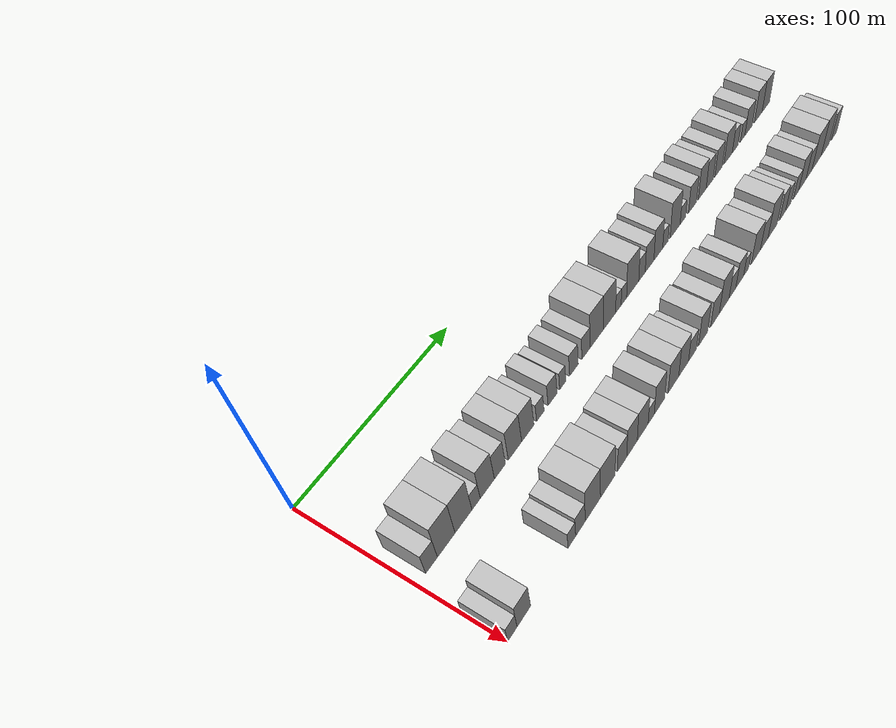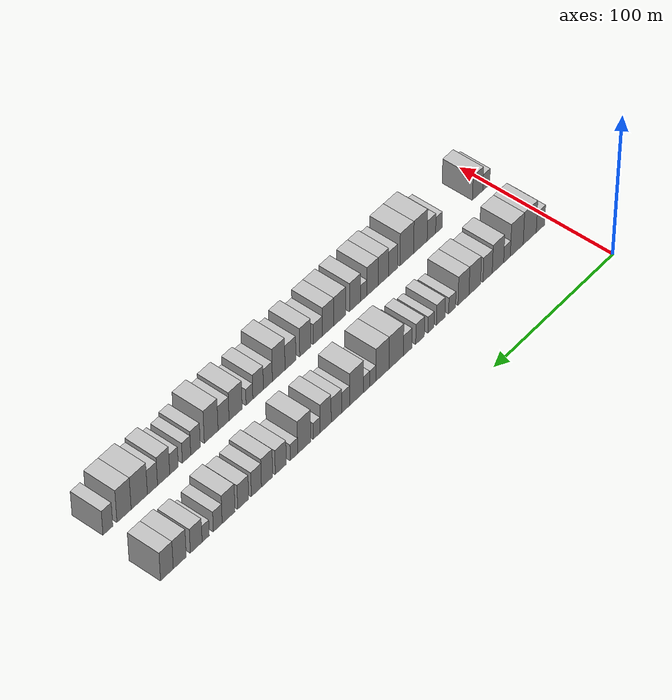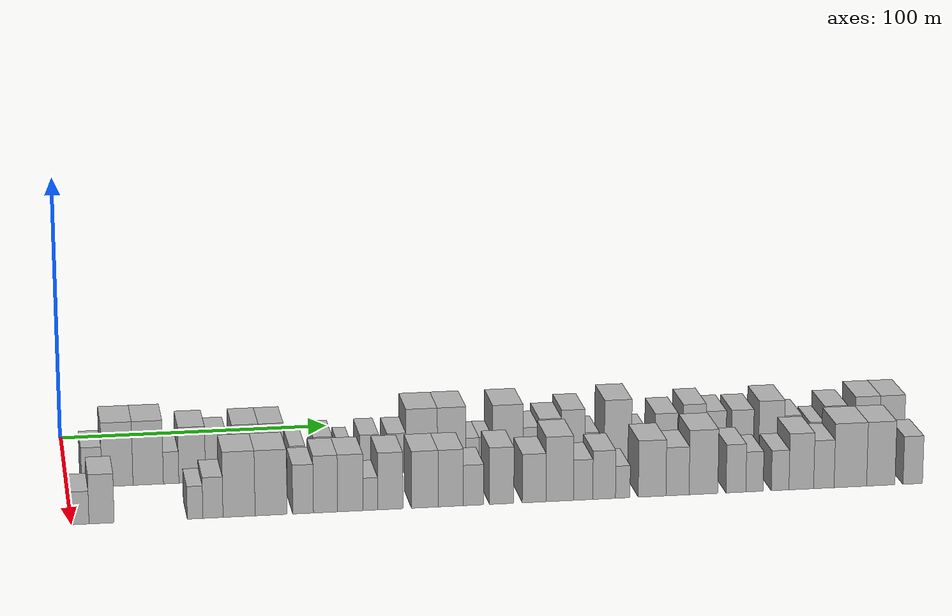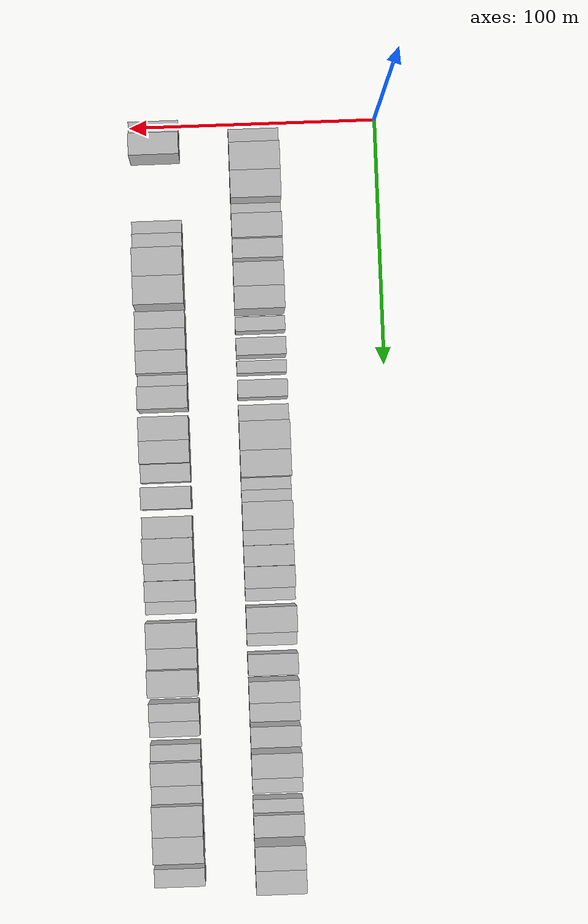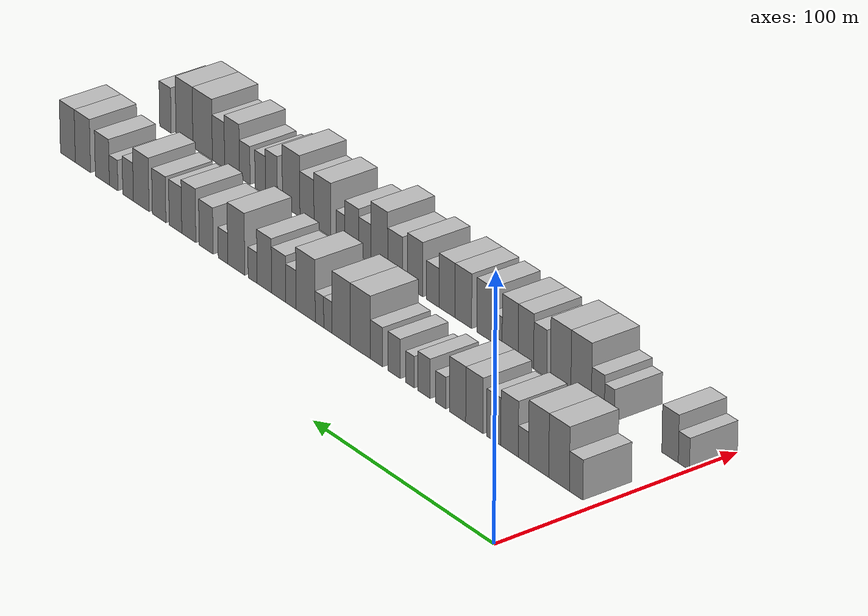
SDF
<sdf version="1.6">
 <world name="default">
  <model name="building_35">
   <static>1</static>
   <pose>50.0000 8.9988 0 0.000000 0.000000 0.000000</pose>
   <link name="link">
    <pose>0 0 7.50 0 0 0</pose>
    <collision name="collision"><geometry><box><size>20.0000 7.2240 15.0000</size></box></geometry></collision>
    <visual name="visual">
     <cast_shadows>0</cast_shadows>
     <geometry><box><size>20.0000 7.2240 15.0000</size></box></geometry>
     <material>
      <script>
       <uri>model://HANNAS_wall/materials/scripts</uri>
       <uri>model://HANNAS_wall/materials/textures</uri>
       <name>vrc/HANNAS_wall</name>
      </script>
     </material>
    </visual>
   </link>
  </model>
  <model name="building_36">
   <static>1</static>
   <pose>50.0000 18.1661 0 0.000000 0.000000 0.000000</pose>
   <link name="link">
    <pose>0 0 12.00 0 0 0</pose>
    <collision name="collision"><geometry><box><size>20.0000 11.1104 24.0000</size></box></geometry></collision>
    <visual name="visual">
     <cast_shadows>0</cast_shadows>
     <geometry><box><size>20.0000 11.1104 24.0000</size></box></geometry>
     <material>
      <script>
       <uri>model://HANNAS_wall/materials/scripts</uri>
       <uri>model://HANNAS_wall/materials/textures</uri>
       <name>vrc/HANNAS_wall</name>
      </script>
     </material>
    </visual>
   </link>
  </model>
  <model name="building_37">
   <static>1</static>
   <pose>50.0000 29.1896 0 0.000000 0.000000 0.000000</pose>
   <link name="link">
    <pose>0 0 12.00 0 0 0</pose>
    <collision name="collision"><geometry><box><size>20.0000 10.9366 24.0000</size></box></geometry></collision>
    <visual name="visual">
     <cast_shadows>0</cast_shadows>
     <geometry><box><size>20.0000 10.9366 24.0000</size></box></geometry>
     <material>
      <script>
       <uri>model://HANNAS_wall/materials/scripts</uri>
       <uri>model://HANNAS_wall/materials/textures</uri>
       <name>vrc/HANNAS_wall</name>
      </script>
     </material>
    </visual>
   </link>
  </model>
  <model name="building_38">
   <static>1</static>
   <pose>50.0000 37.4352 0 0.000000 0.000000 0.000000</pose>
   <link name="link">
    <pose>0 0 6.00 0 0 0</pose>
    <collision name="collision"><geometry><box><size>20.0000 5.5546 12.0000</size></box></geometry></collision>
    <visual name="visual">
     <cast_shadows>0</cast_shadows>
     <geometry><box><size>20.0000 5.5546 12.0000</size></box></geometry>
     <material>
      <script>
       <uri>model://HANNAS_wall/materials/scripts</uri>
       <uri>model://HANNAS_wall/materials/textures</uri>
       <name>vrc/HANNAS_wall</name>
      </script>
     </material>
    </visual>
   </link>
  </model>
  <model name="building_39">
   <static>1</static>
   <pose>50.0000 45.0216 0 0.000000 0.000000 0.000000</pose>
   <link name="link">
    <pose>0 0 10.50 0 0 0</pose>
    <collision name="collision"><geometry><box><size>20.0000 9.6183 21.0000</size></box></geometry></collision>
    <visual name="visual">
     <cast_shadows>0</cast_shadows>
     <geometry><box><size>20.0000 9.6183 21.0000</size></box></geometry>
     <material>
      <script>
       <uri>model://HANNAS_wall/materials/scripts</uri>
       <uri>model://HANNAS_wall/materials/textures</uri>
       <name>vrc/HANNAS_wall</name>
      </script>
     </material>
    </visual>
   </link>
  </model>
  <model name="building_40">
   <static>1</static>
   <pose>50.0000 53.6917 0 0.000000 0.000000 0.000000</pose>
   <link name="link">
    <pose>0 0 9.00 0 0 0</pose>
    <collision name="collision"><geometry><box><size>20.0000 7.7219 18.0000</size></box></geometry></collision>
    <visual name="visual">
     <cast_shadows>0</cast_shadows>
     <geometry><box><size>20.0000 7.7219 18.0000</size></box></geometry>
     <material>
      <script>
       <uri>model://HANNAS_wall/materials/scripts</uri>
       <uri>model://HANNAS_wall/materials/textures</uri>
       <name>vrc/HANNAS_wall</name>
      </script>
     </material>
    </visual>
   </link>
  </model>
  <model name="building_41">
   <static>1</static>
   <pose>50.0000 64.3561 0 0.000000 0.000000 0.000000</pose>
   <link name="link">
    <pose>0 0 10.50 0 0 0</pose>
    <collision name="collision"><geometry><box><size>20.0000 9.6068 21.0000</size></box></geometry></collision>
    <visual name="visual">
     <cast_shadows>0</cast_shadows>
     <geometry><box><size>20.0000 9.6068 21.0000</size></box></geometry>
     <material>
      <script>
       <uri>model://HANNAS_wall/materials/scripts</uri>
       <uri>model://HANNAS_wall/materials/textures</uri>
       <name>vrc/HANNAS_wall</name>
      </script>
     </material>
    </visual>
   </link>
  </model>
  <model name="building_42">
   <static>1</static>
   <pose>50.0000 73.6886 0 0.000000 0.000000 0.000000</pose>
   <link name="link">
    <pose>0 0 10.50 0 0 0</pose>
    <collision name="collision"><geometry><box><size>20.0000 9.0583 21.0000</size></box></geometry></collision>
    <visual name="visual">
     <cast_shadows>0</cast_shadows>
     <geometry><box><size>20.0000 9.0583 21.0000</size></box></geometry>
     <material>
      <script>
       <uri>model://HANNAS_wall/materials/scripts</uri>
       <uri>model://HANNAS_wall/materials/textures</uri>
       <name>vrc/HANNAS_wall</name>
      </script>
     </material>
    </visual>
   </link>
  </model>
  <model name="building_43">
   <static>1</static>
   <pose>50.0000 83.0665 0 0.000000 0.000000 0.000000</pose>
   <link name="link">
    <pose>0 0 6.00 0 0 0</pose>
    <collision name="collision"><geometry><box><size>20.0000 5.6975 12.0000</size></box></geometry></collision>
    <visual name="visual">
     <cast_shadows>0</cast_shadows>
     <geometry><box><size>20.0000 5.6975 12.0000</size></box></geometry>
     <material>
      <script>
       <uri>model://HANNAS_wall/materials/scripts</uri>
       <uri>model://HANNAS_wall/materials/textures</uri>
       <name>vrc/HANNAS_wall</name>
      </script>
     </material>
    </visual>
   </link>
  </model>
  <model name="building_44">
   <static>1</static>
   <pose>50.0000 92.3991 0 0.000000 0.000000 0.000000</pose>
   <link name="link">
    <pose>0 0 7.50 0 0 0</pose>
    <collision name="collision"><geometry><box><size>20.0000 6.9675 15.0000</size></box></geometry></collision>
    <visual name="visual">
     <cast_shadows>0</cast_shadows>
     <geometry><box><size>20.0000 6.9675 15.0000</size></box></geometry>
     <material>
      <script>
       <uri>model://HANNAS_wall/materials/scripts</uri>
       <uri>model://HANNAS_wall/materials/textures</uri>
       <name>vrc/HANNAS_wall</name>
      </script>
     </material>
    </visual>
   </link>
  </model>
  <model name="building_45">
   <static>1</static>
   <pose>50.0000 100.3335 0 0.000000 0.000000 0.000000</pose>
   <link name="link">
    <pose>0 0 6.00 0 0 0</pose>
    <collision name="collision"><geometry><box><size>20.0000 4.9013 12.0000</size></box></geometry></collision>
    <visual name="visual">
     <cast_shadows>0</cast_shadows>
     <geometry><box><size>20.0000 4.9013 12.0000</size></box></geometry>
     <material>
      <script>
       <uri>model://HANNAS_wall/materials/scripts</uri>
       <uri>model://HANNAS_wall/materials/textures</uri>
       <name>vrc/HANNAS_wall</name>
      </script>
     </material>
    </visual>
   </link>
  </model>
  <model name="building_46">
   <static>1</static>
   <pose>50.0000 109.2927 0 0.000000 0.000000 0.000000</pose>
   <link name="link">
    <pose>0 0 7.50 0 0 0</pose>
    <collision name="collision"><geometry><box><size>20.0000 7.0171 15.0000</size></box></geometry></collision>
    <visual name="visual">
     <cast_shadows>0</cast_shadows>
     <geometry><box><size>20.0000 7.0171 15.0000</size></box></geometry>
     <material>
      <script>
       <uri>model://HANNAS_wall/materials/scripts</uri>
       <uri>model://HANNAS_wall/materials/textures</uri>
       <name>vrc/HANNAS_wall</name>
      </script>
     </material>
    </visual>
   </link>
  </model>
  <model name="building_47">
   <static>1</static>
   <pose>50.0000 119.2499 0 0.000000 0.000000 0.000000</pose>
   <link name="link">
    <pose>0 0 7.50 0 0 0</pose>
    <collision name="collision"><geometry><box><size>20.0000 6.8973 15.0000</size></box></geometry></collision>
    <visual name="visual">
     <cast_shadows>0</cast_shadows>
     <geometry><box><size>20.0000 6.8973 15.0000</size></box></geometry>
     <material>
      <script>
       <uri>model://HANNAS_wall/materials/scripts</uri>
       <uri>model://HANNAS_wall/materials/textures</uri>
       <name>vrc/HANNAS_wall</name>
      </script>
     </material>
    </visual>
   </link>
  </model>
  <model name="building_48">
   <static>1</static>
   <pose>50.0000 128.4624 0 0.000000 0.000000 0.000000</pose>
   <link name="link">
    <pose>0 0 12.00 0 0 0</pose>
    <collision name="collision"><geometry><box><size>20.0000 11.5277 24.0000</size></box></geometry></collision>
    <visual name="visual">
     <cast_shadows>0</cast_shadows>
     <geometry><box><size>20.0000 11.5277 24.0000</size></box></geometry>
     <material>
      <script>
       <uri>model://HANNAS_wall/materials/scripts</uri>
       <uri>model://HANNAS_wall/materials/textures</uri>
       <name>vrc/HANNAS_wall</name>
      </script>
     </material>
    </visual>
   </link>
  </model>
  <model name="building_49">
   <static>1</static>
   <pose>50.0000 139.4793 0 0.000000 0.000000 0.000000</pose>
   <link name="link">
    <pose>0 0 12.00 0 0 0</pose>
    <collision name="collision"><geometry><box><size>20.0000 10.5061 24.0000</size></box></geometry></collision>
    <visual name="visual">
     <cast_shadows>0</cast_shadows>
     <geometry><box><size>20.0000 10.5061 24.0000</size></box></geometry>
     <material>
      <script>
       <uri>model://HANNAS_wall/materials/scripts</uri>
       <uri>model://HANNAS_wall/materials/textures</uri>
       <name>vrc/HANNAS_wall</name>
      </script>
     </material>
    </visual>
   </link>
  </model>
  <model name="building_50">
   <static>1</static>
   <pose>50.0000 147.1535 0 0.000000 0.000000 0.000000</pose>
   <link name="link">
    <pose>0 0 6.00 0 0 0</pose>
    <collision name="collision"><geometry><box><size>20.0000 4.8423 12.0000</size></box></geometry></collision>
    <visual name="visual">
     <cast_shadows>0</cast_shadows>
     <geometry><box><size>20.0000 4.8423 12.0000</size></box></geometry>
     <material>
      <script>
       <uri>model://HANNAS_wall/materials/scripts</uri>
       <uri>model://HANNAS_wall/materials/textures</uri>
       <name>vrc/HANNAS_wall</name>
      </script>
     </material>
    </visual>
   </link>
  </model>
  <model name="building_51">
   <static>1</static>
   <pose>50.0000 152.0326 0 0.000000 0.000000 0.000000</pose>
   <link name="link">
    <pose>0 0 6.00 0 0 0</pose>
    <collision name="collision"><geometry><box><size>20.0000 4.9160 12.0000</size></box></geometry></collision>
    <visual name="visual">
     <cast_shadows>0</cast_shadows>
     <geometry><box><size>20.0000 4.9160 12.0000</size></box></geometry>
     <material>
      <script>
       <uri>model://HANNAS_wall/materials/scripts</uri>
       <uri>model://HANNAS_wall/materials/textures</uri>
       <name>vrc/HANNAS_wall</name>
      </script>
     </material>
    </visual>
   </link>
  </model>
  <model name="building_52">
   <static>1</static>
   <pose>50.0000 160.0803 0 0.000000 0.000000 0.000000</pose>
   <link name="link">
    <pose>0 0 12.00 0 0 0</pose>
    <collision name="collision"><geometry><box><size>20.0000 11.1795 24.0000</size></box></geometry></collision>
    <visual name="visual">
     <cast_shadows>0</cast_shadows>
     <geometry><box><size>20.0000 11.1795 24.0000</size></box></geometry>
     <material>
      <script>
       <uri>model://HANNAS_wall/materials/scripts</uri>
       <uri>model://HANNAS_wall/materials/textures</uri>
       <name>vrc/HANNAS_wall</name>
      </script>
     </material>
    </visual>
   </link>
  </model>
  <model name="building_53">
   <static>1</static>
   <pose>50.0000 168.6992 0 0.000000 0.000000 0.000000</pose>
   <link name="link">
    <pose>0 0 7.50 0 0 0</pose>
    <collision name="collision"><geometry><box><size>20.0000 6.0583 15.0000</size></box></geometry></collision>
    <visual name="visual">
     <cast_shadows>0</cast_shadows>
     <geometry><box><size>20.0000 6.0583 15.0000</size></box></geometry>
     <material>
      <script>
       <uri>model://HANNAS_wall/materials/scripts</uri>
       <uri>model://HANNAS_wall/materials/textures</uri>
       <name>vrc/HANNAS_wall</name>
      </script>
     </material>
    </visual>
   </link>
  </model>
  <model name="building_54">
   <static>1</static>
   <pose>50.0000 175.8635 0 0.000000 0.000000 0.000000</pose>
   <link name="link">
    <pose>0 0 9.00 0 0 0</pose>
    <collision name="collision"><geometry><box><size>20.0000 8.2704 18.0000</size></box></geometry></collision>
    <visual name="visual">
     <cast_shadows>0</cast_shadows>
     <geometry><box><size>20.0000 8.2704 18.0000</size></box></geometry>
     <material>
      <script>
       <uri>model://HANNAS_wall/materials/scripts</uri>
       <uri>model://HANNAS_wall/materials/textures</uri>
       <name>vrc/HANNAS_wall</name>
      </script>
     </material>
    </visual>
   </link>
  </model>
  <model name="building_55">
   <static>1</static>
   <pose>50.0000 184.2989 0 0.000000 0.000000 0.000000</pose>
   <link name="link">
    <pose>0 0 10.50 0 0 0</pose>
    <collision name="collision"><geometry><box><size>20.0000 8.6005 21.0000</size></box></geometry></collision>
    <visual name="visual">
     <cast_shadows>0</cast_shadows>
     <geometry><box><size>20.0000 8.6005 21.0000</size></box></geometry>
     <material>
      <script>
       <uri>model://HANNAS_wall/materials/scripts</uri>
       <uri>model://HANNAS_wall/materials/textures</uri>
       <name>vrc/HANNAS_wall</name>
      </script>
     </material>
    </visual>
   </link>
  </model>
  <model name="building_56">
   <static>1</static>
   <pose>50.0000 191.2428 0 0.000000 0.000000 0.000000</pose>
   <link name="link">
    <pose>0 0 6.00 0 0 0</pose>
    <collision name="collision"><geometry><box><size>20.0000 5.2873 12.0000</size></box></geometry></collision>
    <visual name="visual">
     <cast_shadows>0</cast_shadows>
     <geometry><box><size>20.0000 5.2873 12.0000</size></box></geometry>
     <material>
      <script>
       <uri>model://HANNAS_wall/materials/scripts</uri>
       <uri>model://HANNAS_wall/materials/textures</uri>
       <name>vrc/HANNAS_wall</name>
      </script>
     </material>
    </visual>
   </link>
  </model>
  <model name="building_57">
   <static>1</static>
   <pose>50.0000 200.9584 0 0.000000 0.000000 0.000000</pose>
   <link name="link">
    <pose>0 0 12.00 0 0 0</pose>
    <collision name="collision"><geometry><box><size>20.0000 10.1439 24.0000</size></box></geometry></collision>
    <visual name="visual">
     <cast_shadows>0</cast_shadows>
     <geometry><box><size>20.0000 10.1439 24.0000</size></box></geometry>
     <material>
      <script>
       <uri>model://HANNAS_wall/materials/scripts</uri>
       <uri>model://HANNAS_wall/materials/textures</uri>
       <name>vrc/HANNAS_wall</name>
      </script>
     </material>
    </visual>
   </link>
  </model>
  <model name="building_58">
   <static>1</static>
   <pose>50.0000 208.8905 0 0.000000 0.000000 0.000000</pose>
   <link name="link">
    <pose>0 0 6.00 0 0 0</pose>
    <collision name="collision"><geometry><box><size>20.0000 5.7202 12.0000</size></box></geometry></collision>
    <visual name="visual">
     <cast_shadows>0</cast_shadows>
     <geometry><box><size>20.0000 5.7202 12.0000</size></box></geometry>
     <material>
      <script>
       <uri>model://HANNAS_wall/materials/scripts</uri>
       <uri>model://HANNAS_wall/materials/textures</uri>
       <name>vrc/HANNAS_wall</name>
      </script>
     </material>
    </visual>
   </link>
  </model>
  <model name="building_59">
   <static>1</static>
   <pose>50.0000 218.9692 0 0.000000 0.000000 0.000000</pose>
   <link name="link">
    <pose>0 0 9.00 0 0 0</pose>
    <collision name="collision"><geometry><box><size>20.0000 8.4372 18.0000</size></box></geometry></collision>
    <visual name="visual">
     <cast_shadows>0</cast_shadows>
     <geometry><box><size>20.0000 8.4372 18.0000</size></box></geometry>
     <material>
      <script>
       <uri>model://HANNAS_wall/materials/scripts</uri>
       <uri>model://HANNAS_wall/materials/textures</uri>
       <name>vrc/HANNAS_wall</name>
      </script>
     </material>
    </visual>
   </link>
  </model>
  <model name="building_60">
   <static>1</static>
   <pose>50.0000 229.4449 0 0.000000 0.000000 0.000000</pose>
   <link name="link">
    <pose>0 0 10.50 0 0 0</pose>
    <collision name="collision"><geometry><box><size>20.0000 8.5144 21.0000</size></box></geometry></collision>
    <visual name="visual">
     <cast_shadows>0</cast_shadows>
     <geometry><box><size>20.0000 8.5144 21.0000</size></box></geometry>
     <material>
      <script>
       <uri>model://HANNAS_wall/materials/scripts</uri>
       <uri>model://HANNAS_wall/materials/textures</uri>
       <name>vrc/HANNAS_wall</name>
      </script>
     </material>
    </visual>
   </link>
  </model>
  <model name="building_61">
   <static>1</static>
   <pose>50.0000 237.5235 0 0.000000 0.000000 0.000000</pose>
   <link name="link">
    <pose>0 0 9.00 0 0 0</pose>
    <collision name="collision"><geometry><box><size>20.0000 7.6428 18.0000</size></box></geometry></collision>
    <visual name="visual">
     <cast_shadows>0</cast_shadows>
     <geometry><box><size>20.0000 7.6428 18.0000</size></box></geometry>
     <material>
      <script>
       <uri>model://HANNAS_wall/materials/scripts</uri>
       <uri>model://HANNAS_wall/materials/textures</uri>
       <name>vrc/HANNAS_wall</name>
      </script>
     </material>
    </visual>
   </link>
  </model>
  <model name="building_62">
   <static>1</static>
   <pose>50.0000 247.4943 0 0.000000 0.000000 0.000000</pose>
   <link name="link">
    <pose>0 0 9.00 0 0 0</pose>
    <collision name="collision"><geometry><box><size>20.0000 8.2988 18.0000</size></box></geometry></collision>
    <visual name="visual">
     <cast_shadows>0</cast_shadows>
     <geometry><box><size>20.0000 8.2988 18.0000</size></box></geometry>
     <material>
      <script>
       <uri>model://HANNAS_wall/materials/scripts</uri>
       <uri>model://HANNAS_wall/materials/textures</uri>
       <name>vrc/HANNAS_wall</name>
      </script>
     </material>
    </visual>
   </link>
  </model>
  <model name="building_63">
   <static>1</static>
   <pose>50.0000 258.4610 0 0.000000 0.000000 0.000000</pose>
   <link name="link">
    <pose>0 0 10.50 0 0 0</pose>
    <collision name="collision"><geometry><box><size>20.0000 9.6345 21.0000</size></box></geometry></collision>
    <visual name="visual">
     <cast_shadows>0</cast_shadows>
     <geometry><box><size>20.0000 9.6345 21.0000</size></box></geometry>
     <material>
      <script>
       <uri>model://HANNAS_wall/materials/scripts</uri>
       <uri>model://HANNAS_wall/materials/textures</uri>
       <name>vrc/HANNAS_wall</name>
      </script>
     </material>
    </visual>
   </link>
  </model>
  <model name="building_64">
   <static>1</static>
   <pose>50.0000 266.5638 0 0.000000 0.000000 0.000000</pose>
   <link name="link">
    <pose>0 0 7.50 0 0 0</pose>
    <collision name="collision"><geometry><box><size>20.0000 6.5711 15.0000</size></box></geometry></collision>
    <visual name="visual">
     <cast_shadows>0</cast_shadows>
     <geometry><box><size>20.0000 6.5711 15.0000</size></box></geometry>
     <material>
      <script>
       <uri>model://HANNAS_wall/materials/scripts</uri>
       <uri>model://HANNAS_wall/materials/textures</uri>
       <name>vrc/HANNAS_wall</name>
      </script>
     </material>
    </visual>
   </link>
  </model>
  <model name="building_65">
   <static>1</static>
   <pose>50.0000 275.5060 0 0.000000 0.000000 0.000000</pose>
   <link name="link">
    <pose>0 0 6.00 0 0 0</pose>
    <collision name="collision"><geometry><box><size>20.0000 5.3133 12.0000</size></box></geometry></collision>
    <visual name="visual">
     <cast_shadows>0</cast_shadows>
     <geometry><box><size>20.0000 5.3133 12.0000</size></box></geometry>
     <material>
      <script>
       <uri>model://HANNAS_wall/materials/scripts</uri>
       <uri>model://HANNAS_wall/materials/textures</uri>
       <name>vrc/HANNAS_wall</name>
      </script>
     </material>
    </visual>
   </link>
  </model>
  <model name="building_66">
   <static>1</static>
   <pose>50.0000 282.5201 0 0.000000 0.000000 0.000000</pose>
   <link name="link">
    <pose>0 0 9.00 0 0 0</pose>
    <collision name="collision"><geometry><box><size>20.0000 8.7149 18.0000</size></box></geometry></collision>
    <visual name="visual">
     <cast_shadows>0</cast_shadows>
     <geometry><box><size>20.0000 8.7149 18.0000</size></box></geometry>
     <material>
      <script>
       <uri>model://HANNAS_wall/materials/scripts</uri>
       <uri>model://HANNAS_wall/materials/textures</uri>
       <name>vrc/HANNAS_wall</name>
      </script>
     </material>
    </visual>
   </link>
  </model>
  <model name="building_67">
   <static>1</static>
   <pose>50.0000 294.6519 0 0.000000 0.000000 0.000000</pose>
   <link name="link">
    <pose>0 0 10.50 0 0 0</pose>
    <collision name="collision"><geometry><box><size>20.0000 9.5487 21.0000</size></box></geometry></collision>
    <visual name="visual">
     <cast_shadows>0</cast_shadows>
     <geometry><box><size>20.0000 9.5487 21.0000</size></box></geometry>
     <material>
      <script>
       <uri>model://HANNAS_wall/materials/scripts</uri>
       <uri>model://HANNAS_wall/materials/textures</uri>
       <name>vrc/HANNAS_wall</name>
      </script>
     </material>
    </visual>
   </link>
  </model>
  <model name="building_68">
   <static>1</static>
   <pose>50.0000 304.0890 0 0.000000 0.000000 0.000000</pose>
   <link name="link">
    <pose>0 0 10.50 0 0 0</pose>
    <collision name="collision"><geometry><box><size>20.0000 9.3257 21.0000</size></box></geometry></collision>
    <visual name="visual">
     <cast_shadows>0</cast_shadows>
     <geometry><box><size>20.0000 9.3257 21.0000</size></box></geometry>
     <material>
      <script>
       <uri>model://HANNAS_wall/materials/scripts</uri>
       <uri>model://HANNAS_wall/materials/textures</uri>
       <name>vrc/HANNAS_wall</name>
      </script>
     </material>
    </visual>
   </link>
  </model>
  <model name="building_99">
   <static>1</static>
   <pose>90.0000 3.1528 0 0.000000 0.000000 0.000000</pose>
   <link name="link">
    <pose>0 0 6.00 0 0 0</pose>
    <collision name="collision"><geometry><box><size>20.0000 5.9860 12.0000</size></box></geometry></collision>
    <visual name="visual">
     <cast_shadows>0</cast_shadows>
     <geometry><box><size>20.0000 5.9860 12.0000</size></box></geometry>
     <material>
      <script>
       <uri>model://HANNAS_wall/materials/scripts</uri>
       <uri>model://HANNAS_wall/materials/textures</uri>
       <name>vrc/HANNAS_wall</name>
      </script>
     </material>
    </visual>
   </link>
  </model>
  <model name="building_100">
   <static>1</static>
   <pose>90.0000 10.5319 0 0.000000 0.000000 0.000000</pose>
   <link name="link">
    <pose>0 0 9.00 0 0 0</pose>
    <collision name="collision"><geometry><box><size>20.0000 8.7723 18.0000</size></box></geometry></collision>
    <visual name="visual">
     <cast_shadows>0</cast_shadows>
     <geometry><box><size>20.0000 8.7723 18.0000</size></box></geometry>
     <material>
      <script>
       <uri>model://HANNAS_wall/materials/scripts</uri>
       <uri>model://HANNAS_wall/materials/textures</uri>
       <name>vrc/HANNAS_wall</name>
      </script>
     </material>
    </visual>
   </link>
  </model>
  <model name="building_101">
   <static>1</static>
   <pose>90.0000 43.1223 0 0.000000 0.000000 0.000000</pose>
   <link name="link">
    <pose>0 0 6.00 0 0 0</pose>
    <collision name="collision"><geometry><box><size>20.0000 5.4695 12.0000</size></box></geometry></collision>
    <visual name="visual">
     <cast_shadows>0</cast_shadows>
     <geometry><box><size>20.0000 5.4695 12.0000</size></box></geometry>
     <material>
      <script>
       <uri>model://HANNAS_wall/materials/scripts</uri>
       <uri>model://HANNAS_wall/materials/textures</uri>
       <name>vrc/HANNAS_wall</name>
      </script>
     </material>
    </visual>
   </link>
  </model>
  <model name="building_102">
   <static>1</static>
   <pose>90.0000 49.3769 0 0.000000 0.000000 0.000000</pose>
   <link name="link">
    <pose>0 0 7.50 0 0 0</pose>
    <collision name="collision"><geometry><box><size>20.0000 7.0397 15.0000</size></box></geometry></collision>
    <visual name="visual">
     <cast_shadows>0</cast_shadows>
     <geometry><box><size>20.0000 7.0397 15.0000</size></box></geometry>
     <material>
      <script>
       <uri>model://HANNAS_wall/materials/scripts</uri>
       <uri>model://HANNAS_wall/materials/textures</uri>
       <name>vrc/HANNAS_wall</name>
      </script>
     </material>
    </visual>
   </link>
  </model>
  <model name="building_103">
   <static>1</static>
   <pose>90.0000 58.5295 0 0.000000 0.000000 0.000000</pose>
   <link name="link">
    <pose>0 0 12.00 0 0 0</pose>
    <collision name="collision"><geometry><box><size>20.0000 11.2656 24.0000</size></box></geometry></collision>
    <visual name="visual">
     <cast_shadows>0</cast_shadows>
     <geometry><box><size>20.0000 11.2656 24.0000</size></box></geometry>
     <material>
      <script>
       <uri>model://HANNAS_wall/materials/scripts</uri>
       <uri>model://HANNAS_wall/materials/textures</uri>
       <name>vrc/HANNAS_wall</name>
      </script>
     </material>
    </visual>
   </link>
  </model>
  <model name="building_104">
   <static>1</static>
   <pose>90.0000 69.7854 0 0.000000 0.000000 0.000000</pose>
   <link name="link">
    <pose>0 0 12.00 0 0 0</pose>
    <collision name="collision"><geometry><box><size>20.0000 11.2462 24.0000</size></box></geometry></collision>
    <visual name="visual">
     <cast_shadows>0</cast_shadows>
     <geometry><box><size>20.0000 11.2462 24.0000</size></box></geometry>
     <material>
      <script>
       <uri>model://HANNAS_wall/materials/scripts</uri>
       <uri>model://HANNAS_wall/materials/textures</uri>
       <name>vrc/HANNAS_wall</name>
      </script>
     </material>
    </visual>
   </link>
  </model>
  <model name="building_105">
   <static>1</static>
   <pose>90.0000 81.0617 0 0.000000 0.000000 0.000000</pose>
   <link name="link">
    <pose>0 0 9.00 0 0 0</pose>
    <collision name="collision"><geometry><box><size>20.0000 7.3064 18.0000</size></box></geometry></collision>
    <visual name="visual">
     <cast_shadows>0</cast_shadows>
     <geometry><box><size>20.0000 7.3064 18.0000</size></box></geometry>
     <material>
      <script>
       <uri>model://HANNAS_wall/materials/scripts</uri>
       <uri>model://HANNAS_wall/materials/textures</uri>
       <name>vrc/HANNAS_wall</name>
      </script>
     </material>
    </visual>
   </link>
  </model>
  <model name="building_106">
   <static>1</static>
   <pose>90.0000 88.9933 0 0.000000 0.000000 0.000000</pose>
   <link name="link">
    <pose>0 0 10.50 0 0 0</pose>
    <collision name="collision"><geometry><box><size>20.0000 8.5568 21.0000</size></box></geometry></collision>
    <visual name="visual">
     <cast_shadows>0</cast_shadows>
     <geometry><box><size>20.0000 8.5568 21.0000</size></box></geometry>
     <material>
      <script>
       <uri>model://HANNAS_wall/materials/scripts</uri>
       <uri>model://HANNAS_wall/materials/textures</uri>
       <name>vrc/HANNAS_wall</name>
      </script>
     </material>
    </visual>
   </link>
  </model>
  <model name="building_107">
   <static>1</static>
   <pose>90.0000 97.7847 0 0.000000 0.000000 0.000000</pose>
   <link name="link">
    <pose>0 0 10.50 0 0 0</pose>
    <collision name="collision"><geometry><box><size>20.0000 9.0261 21.0000</size></box></geometry></collision>
    <visual name="visual">
     <cast_shadows>0</cast_shadows>
     <geometry><box><size>20.0000 9.0261 21.0000</size></box></geometry>
     <material>
      <script>
       <uri>model://HANNAS_wall/materials/scripts</uri>
       <uri>model://HANNAS_wall/materials/textures</uri>
       <name>vrc/HANNAS_wall</name>
      </script>
     </material>
    </visual>
   </link>
  </model>
  <model name="building_108">
   <static>1</static>
   <pose>90.0000 104.9033 0 0.000000 0.000000 0.000000</pose>
   <link name="link">
    <pose>0 0 6.00 0 0 0</pose>
    <collision name="collision"><geometry><box><size>20.0000 5.2110 12.0000</size></box></geometry></collision>
    <visual name="visual">
     <cast_shadows>0</cast_shadows>
     <geometry><box><size>20.0000 5.2110 12.0000</size></box></geometry>
     <material>
      <script>
       <uri>model://HANNAS_wall/materials/scripts</uri>
       <uri>model://HANNAS_wall/materials/textures</uri>
       <name>vrc/HANNAS_wall</name>
      </script>
     </material>
    </visual>
   </link>
  </model>
  <model name="building_109">
   <static>1</static>
   <pose>90.0000 111.9791 0 0.000000 0.000000 0.000000</pose>
   <link name="link">
    <pose>0 0 10.50 0 0 0</pose>
    <collision name="collision"><geometry><box><size>20.0000 8.9406 21.0000</size></box></geometry></collision>
    <visual name="visual">
     <cast_shadows>0</cast_shadows>
     <geometry><box><size>20.0000 8.9406 21.0000</size></box></geometry>
     <material>
      <script>
       <uri>model://HANNAS_wall/materials/scripts</uri>
       <uri>model://HANNAS_wall/materials/textures</uri>
       <name>vrc/HANNAS_wall</name>
      </script>
     </material>
    </visual>
   </link>
  </model>
  <model name="building_110">
   <static>1</static>
   <pose>90.0000 124.2083 0 0.000000 0.000000 0.000000</pose>
   <link name="link">
    <pose>0 0 10.50 0 0 0</pose>
    <collision name="collision"><geometry><box><size>20.0000 9.5178 21.0000</size></box></geometry></collision>
    <visual name="visual">
     <cast_shadows>0</cast_shadows>
     <geometry><box><size>20.0000 9.5178 21.0000</size></box></geometry>
     <material>
      <script>
       <uri>model://HANNAS_wall/materials/scripts</uri>
       <uri>model://HANNAS_wall/materials/textures</uri>
       <name>vrc/HANNAS_wall</name>
      </script>
     </material>
    </visual>
   </link>
  </model>
  <model name="building_111">
   <static>1</static>
   <pose>90.0000 133.4750 0 0.000000 0.000000 0.000000</pose>
   <link name="link">
    <pose>0 0 10.50 0 0 0</pose>
    <collision name="collision"><geometry><box><size>20.0000 9.0155 21.0000</size></box></geometry></collision>
    <visual name="visual">
     <cast_shadows>0</cast_shadows>
     <geometry><box><size>20.0000 9.0155 21.0000</size></box></geometry>
     <material>
      <script>
       <uri>model://HANNAS_wall/materials/scripts</uri>
       <uri>model://HANNAS_wall/materials/textures</uri>
       <name>vrc/HANNAS_wall</name>
      </script>
     </material>
    </visual>
   </link>
  </model>
  <model name="building_112">
   <static>1</static>
   <pose>90.0000 141.6392 0 0.000000 0.000000 0.000000</pose>
   <link name="link">
    <pose>0 0 7.50 0 0 0</pose>
    <collision name="collision"><geometry><box><size>20.0000 7.3128 15.0000</size></box></geometry></collision>
    <visual name="visual">
     <cast_shadows>0</cast_shadows>
     <geometry><box><size>20.0000 7.3128 15.0000</size></box></geometry>
     <material>
      <script>
       <uri>model://HANNAS_wall/materials/scripts</uri>
       <uri>model://HANNAS_wall/materials/textures</uri>
       <name>vrc/HANNAS_wall</name>
      </script>
     </material>
    </visual>
   </link>
  </model>
  <model name="building_113">
   <static>1</static>
   <pose>90.0000 151.6627 0 0.000000 0.000000 0.000000</pose>
   <link name="link">
    <pose>0 0 10.50 0 0 0</pose>
    <collision name="collision"><geometry><box><size>20.0000 8.7342 21.0000</size></box></geometry></collision>
    <visual name="visual">
     <cast_shadows>0</cast_shadows>
     <geometry><box><size>20.0000 8.7342 21.0000</size></box></geometry>
     <material>
      <script>
       <uri>model://HANNAS_wall/materials/scripts</uri>
       <uri>model://HANNAS_wall/materials/textures</uri>
       <name>vrc/HANNAS_wall</name>
      </script>
     </material>
    </visual>
   </link>
  </model>
  <model name="building_114">
   <static>1</static>
   <pose>90.0000 163.2999 0 0.000000 0.000000 0.000000</pose>
   <link name="link">
    <pose>0 0 9.00 0 0 0</pose>
    <collision name="collision"><geometry><box><size>20.0000 8.5403 18.0000</size></box></geometry></collision>
    <visual name="visual">
     <cast_shadows>0</cast_shadows>
     <geometry><box><size>20.0000 8.5403 18.0000</size></box></geometry>
     <material>
      <script>
       <uri>model://HANNAS_wall/materials/scripts</uri>
       <uri>model://HANNAS_wall/materials/textures</uri>
       <name>vrc/HANNAS_wall</name>
      </script>
     </material>
    </visual>
   </link>
  </model>
  <model name="building_115">
   <static>1</static>
   <pose>90.0000 172.5066 0 0.000000 0.000000 0.000000</pose>
   <link name="link">
    <pose>0 0 12.00 0 0 0</pose>
    <collision name="collision"><geometry><box><size>20.0000 9.8730 24.0000</size></box></geometry></collision>
    <visual name="visual">
     <cast_shadows>0</cast_shadows>
     <geometry><box><size>20.0000 9.8730 24.0000</size></box></geometry>
     <material>
      <script>
       <uri>model://HANNAS_wall/materials/scripts</uri>
       <uri>model://HANNAS_wall/materials/textures</uri>
       <name>vrc/HANNAS_wall</name>
      </script>
     </material>
    </visual>
   </link>
  </model>
  <model name="building_116">
   <static>1</static>
   <pose>90.0000 180.9346 0 0.000000 0.000000 0.000000</pose>
   <link name="link">
    <pose>0 0 7.50 0 0 0</pose>
    <collision name="collision"><geometry><box><size>20.0000 6.9832 15.0000</size></box></geometry></collision>
    <visual name="visual">
     <cast_shadows>0</cast_shadows>
     <geometry><box><size>20.0000 6.9832 15.0000</size></box></geometry>
     <material>
      <script>
       <uri>model://HANNAS_wall/materials/scripts</uri>
       <uri>model://HANNAS_wall/materials/textures</uri>
       <name>vrc/HANNAS_wall</name>
      </script>
     </material>
    </visual>
   </link>
  </model>
  <model name="building_117">
   <static>1</static>
   <pose>90.0000 188.5141 0 0.000000 0.000000 0.000000</pose>
   <link name="link">
    <pose>0 0 9.00 0 0 0</pose>
    <collision name="collision"><geometry><box><size>20.0000 8.1758 18.0000</size></box></geometry></collision>
    <visual name="visual">
     <cast_shadows>0</cast_shadows>
     <geometry><box><size>20.0000 8.1758 18.0000</size></box></geometry>
     <material>
      <script>
       <uri>model://HANNAS_wall/materials/scripts</uri>
       <uri>model://HANNAS_wall/materials/textures</uri>
       <name>vrc/HANNAS_wall</name>
      </script>
     </material>
    </visual>
   </link>
  </model>
  <model name="building_118">
   <static>1</static>
   <pose>90.0000 195.2264 0 0.000000 0.000000 0.000000</pose>
   <link name="link">
    <pose>0 0 6.00 0 0 0</pose>
    <collision name="collision"><geometry><box><size>20.0000 5.2486 12.0000</size></box></geometry></collision>
    <visual name="visual">
     <cast_shadows>0</cast_shadows>
     <geometry><box><size>20.0000 5.2486 12.0000</size></box></geometry>
     <material>
      <script>
       <uri>model://HANNAS_wall/materials/scripts</uri>
       <uri>model://HANNAS_wall/materials/textures</uri>
       <name>vrc/HANNAS_wall</name>
      </script>
     </material>
    </visual>
   </link>
  </model>
  <model name="building_119">
   <static>1</static>
   <pose>90.0000 205.8715 0 0.000000 0.000000 0.000000</pose>
   <link name="link">
    <pose>0 0 10.50 0 0 0</pose>
    <collision name="collision"><geometry><box><size>20.0000 10.0417 21.0000</size></box></geometry></collision>
    <visual name="visual">
     <cast_shadows>0</cast_shadows>
     <geometry><box><size>20.0000 10.0417 21.0000</size></box></geometry>
     <material>
      <script>
       <uri>model://HANNAS_wall/materials/scripts</uri>
       <uri>model://HANNAS_wall/materials/textures</uri>
       <name>vrc/HANNAS_wall</name>
      </script>
     </material>
    </visual>
   </link>
  </model>
  <model name="building_120">
   <static>1</static>
   <pose>90.0000 215.0918 0 0.000000 0.000000 0.000000</pose>
   <link name="link">
    <pose>0 0 9.00 0 0 0</pose>
    <collision name="collision"><geometry><box><size>20.0000 8.3989 18.0000</size></box></geometry></collision>
    <visual name="visual">
     <cast_shadows>0</cast_shadows>
     <geometry><box><size>20.0000 8.3989 18.0000</size></box></geometry>
     <material>
      <script>
       <uri>model://HANNAS_wall/materials/scripts</uri>
       <uri>model://HANNAS_wall/materials/textures</uri>
       <name>vrc/HANNAS_wall</name>
      </script>
     </material>
    </visual>
   </link>
  </model>
  <model name="building_121">
   <static>1</static>
   <pose>90.0000 224.5287 0 0.000000 0.000000 0.000000</pose>
   <link name="link">
    <pose>0 0 12.00 0 0 0</pose>
    <collision name="collision"><geometry><box><size>20.0000 10.4748 24.0000</size></box></geometry></collision>
    <visual name="visual">
     <cast_shadows>0</cast_shadows>
     <geometry><box><size>20.0000 10.4748 24.0000</size></box></geometry>
     <material>
      <script>
       <uri>model://HANNAS_wall/materials/scripts</uri>
       <uri>model://HANNAS_wall/materials/textures</uri>
       <name>vrc/HANNAS_wall</name>
      </script>
     </material>
    </visual>
   </link>
  </model>
  <model name="building_122">
   <static>1</static>
   <pose>90.0000 236.3667 0 0.000000 0.000000 0.000000</pose>
   <link name="link">
    <pose>0 0 9.00 0 0 0</pose>
    <collision name="collision"><geometry><box><size>20.0000 7.2013 18.0000</size></box></geometry></collision>
    <visual name="visual">
     <cast_shadows>0</cast_shadows>
     <geometry><box><size>20.0000 7.2013 18.0000</size></box></geometry>
     <material>
      <script>
       <uri>model://HANNAS_wall/materials/scripts</uri>
       <uri>model://HANNAS_wall/materials/textures</uri>
       <name>vrc/HANNAS_wall</name>
      </script>
     </material>
    </visual>
   </link>
  </model>
  <model name="building_123">
   <static>1</static>
   <pose>90.0000 243.1356 0 0.000000 0.000000 0.000000</pose>
   <link name="link">
    <pose>0 0 7.50 0 0 0</pose>
    <collision name="collision"><geometry><box><size>20.0000 6.3365 15.0000</size></box></geometry></collision>
    <visual name="visual">
     <cast_shadows>0</cast_shadows>
     <geometry><box><size>20.0000 6.3365 15.0000</size></box></geometry>
     <material>
      <script>
       <uri>model://HANNAS_wall/materials/scripts</uri>
       <uri>model://HANNAS_wall/materials/textures</uri>
       <name>vrc/HANNAS_wall</name>
      </script>
     </material>
    </visual>
   </link>
  </model>
  <model name="building_124">
   <static>1</static>
   <pose>90.0000 252.5270 0 0.000000 0.000000 0.000000</pose>
   <link name="link">
    <pose>0 0 7.50 0 0 0</pose>
    <collision name="collision"><geometry><box><size>20.0000 6.4463 15.0000</size></box></geometry></collision>
    <visual name="visual">
     <cast_shadows>0</cast_shadows>
     <geometry><box><size>20.0000 6.4463 15.0000</size></box></geometry>
     <material>
      <script>
       <uri>model://HANNAS_wall/materials/scripts</uri>
       <uri>model://HANNAS_wall/materials/textures</uri>
       <name>vrc/HANNAS_wall</name>
      </script>
     </material>
    </visual>
   </link>
  </model>
  <model name="building_125">
   <static>1</static>
   <pose>90.0000 260.2876 0 0.000000 0.000000 0.000000</pose>
   <link name="link">
    <pose>0 0 10.50 0 0 0</pose>
    <collision name="collision"><geometry><box><size>20.0000 9.0749 21.0000</size></box></geometry></collision>
    <visual name="visual">
     <cast_shadows>0</cast_shadows>
     <geometry><box><size>20.0000 9.0749 21.0000</size></box></geometry>
     <material>
      <script>
       <uri>model://HANNAS_wall/materials/scripts</uri>
       <uri>model://HANNAS_wall/materials/textures</uri>
       <name>vrc/HANNAS_wall</name>
      </script>
     </material>
    </visual>
   </link>
  </model>
  <model name="building_126">
   <static>1</static>
   <pose>90.0000 268.5823 0 0.000000 0.000000 0.000000</pose>
   <link name="link">
    <pose>0 0 9.00 0 0 0</pose>
    <collision name="collision"><geometry><box><size>20.0000 7.5145 18.0000</size></box></geometry></collision>
    <visual name="visual">
     <cast_shadows>0</cast_shadows>
     <geometry><box><size>20.0000 7.5145 18.0000</size></box></geometry>
     <material>
      <script>
       <uri>model://HANNAS_wall/materials/scripts</uri>
       <uri>model://HANNAS_wall/materials/textures</uri>
       <name>vrc/HANNAS_wall</name>
      </script>
     </material>
    </visual>
   </link>
  </model>
  <model name="building_127">
   <static>1</static>
   <pose>90.0000 278.3336 0 0.000000 0.000000 0.000000</pose>
   <link name="link">
    <pose>0 0 12.00 0 0 0</pose>
    <collision name="collision"><geometry><box><size>20.0000 11.9880 24.0000</size></box></geometry></collision>
    <visual name="visual">
     <cast_shadows>0</cast_shadows>
     <geometry><box><size>20.0000 11.9880 24.0000</size></box></geometry>
     <material>
      <script>
       <uri>model://HANNAS_wall/materials/scripts</uri>
       <uri>model://HANNAS_wall/materials/textures</uri>
       <name>vrc/HANNAS_wall</name>
      </script>
     </material>
    </visual>
   </link>
  </model>
  <model name="building_128">
   <static>1</static>
   <pose>90.0000 289.5622 0 0.000000 0.000000 0.000000</pose>
   <link name="link">
    <pose>0 0 12.00 0 0 0</pose>
    <collision name="collision"><geometry><box><size>20.0000 10.4691 24.0000</size></box></geometry></collision>
    <visual name="visual">
     <cast_shadows>0</cast_shadows>
     <geometry><box><size>20.0000 10.4691 24.0000</size></box></geometry>
     <material>
      <script>
       <uri>model://HANNAS_wall/materials/scripts</uri>
       <uri>model://HANNAS_wall/materials/textures</uri>
       <name>vrc/HANNAS_wall</name>
      </script>
     </material>
    </visual>
   </link>
  </model>
  <model name="building_129">
   <static>1</static>
   <pose>90.0000 301.3975 0 0.000000 0.000000 0.000000</pose>
   <link name="link">
    <pose>0 0 9.00 0 0 0</pose>
    <collision name="collision"><geometry><box><size>20.0000 7.2015 18.0000</size></box></geometry></collision>
    <visual name="visual">
     <cast_shadows>0</cast_shadows>
     <geometry><box><size>20.0000 7.2015 18.0000</size></box></geometry>
     <material>
      <script>
       <uri>model://HANNAS_wall/materials/scripts</uri>
       <uri>model://HANNAS_wall/materials/textures</uri>
       <name>vrc/HANNAS_wall</name>
      </script>
     </material>
    </visual>
   </link>
  </model>
 </world>
</sdf>
